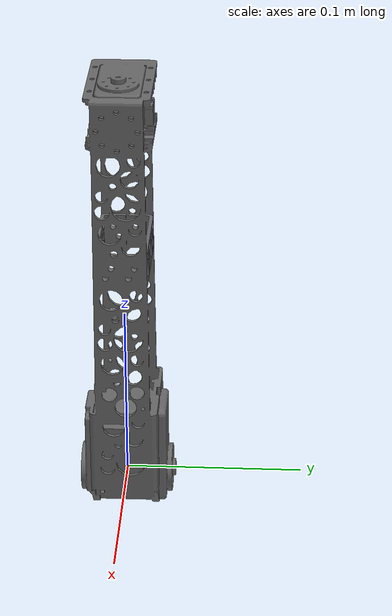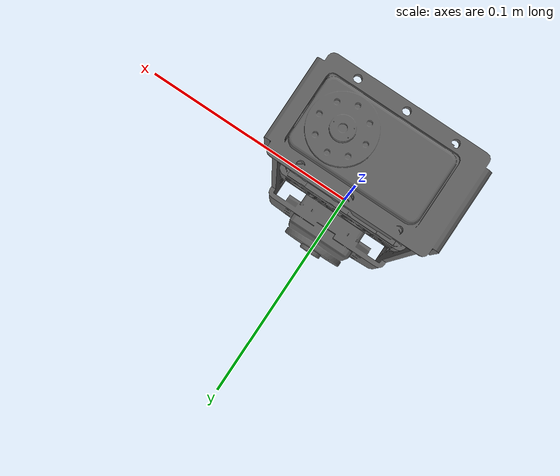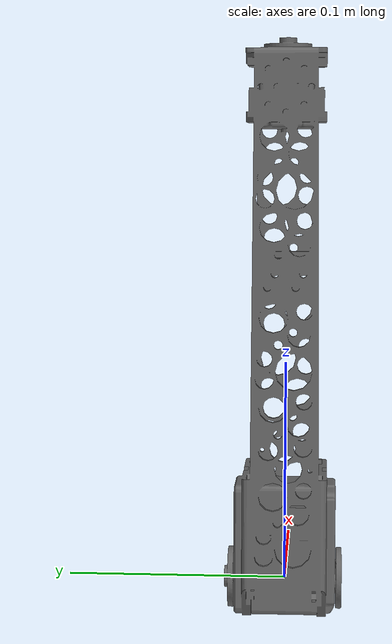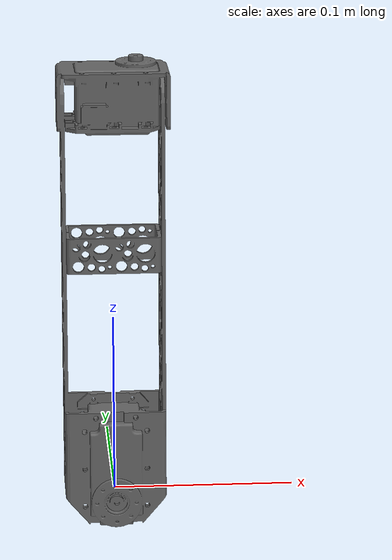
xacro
<robot name="elbow2_link"><link name="elbow2_link">
    <inertial>
      <origin rpy="0 0 0" xyz="-2.29085121194481E-05 -0.000512185919169572 0.0885118786028204" />
      <mass value="1.12138857800426" />
      <inertia ixx="0.0110599202589784" ixy="3.04261287700186E-07" ixz="-1.22468079415109E-06" iyy="0.0110437302875007" iyz="-7.91547787630536E-05" izz="0.000331598270284794" />
    </inertial>
    <visual>
      <origin rpy="0 0 0" xyz="0 0 0" />
      <geometry>
        <mesh filename="package://robotican_description/komodo/meshes/elbow2_link.STL" />
      </geometry>
      <material name="">
        <color rgba="0.4 0.4 0.4 1" />
      </material>
    </visual>
    <collision>
      <origin rpy="0 0 0" xyz="0 0 0" />
      <geometry>
        <mesh filename="package://robotican_description/komodo/meshes/elbow2_link.STL" />
      </geometry>
    </collision>
  </link>
  </robot>
